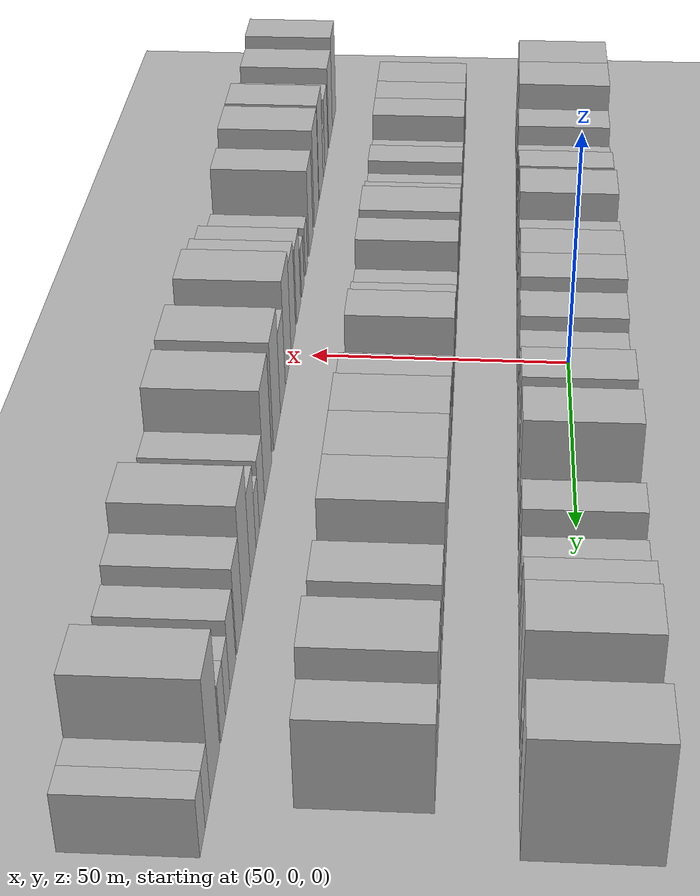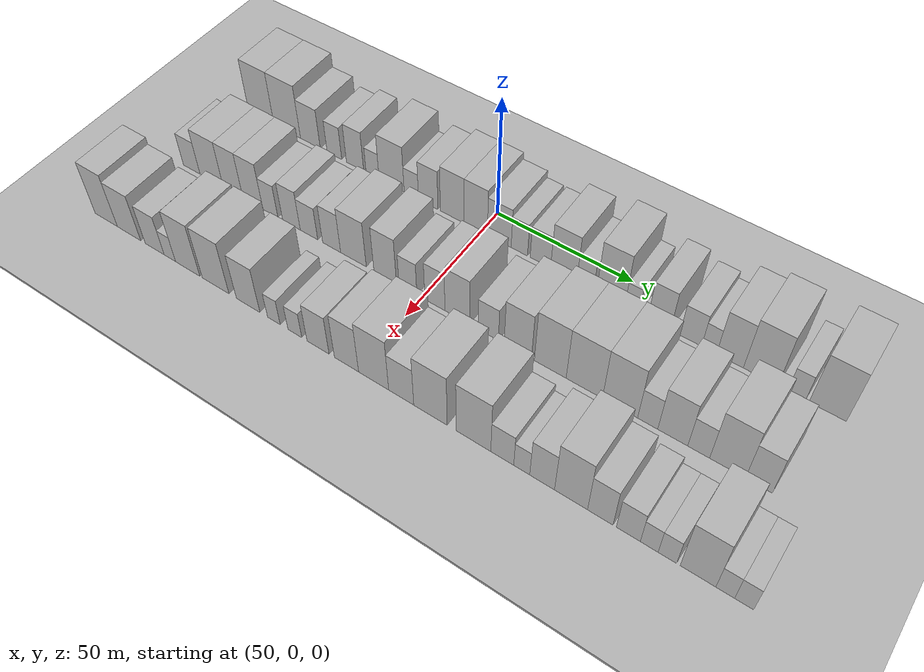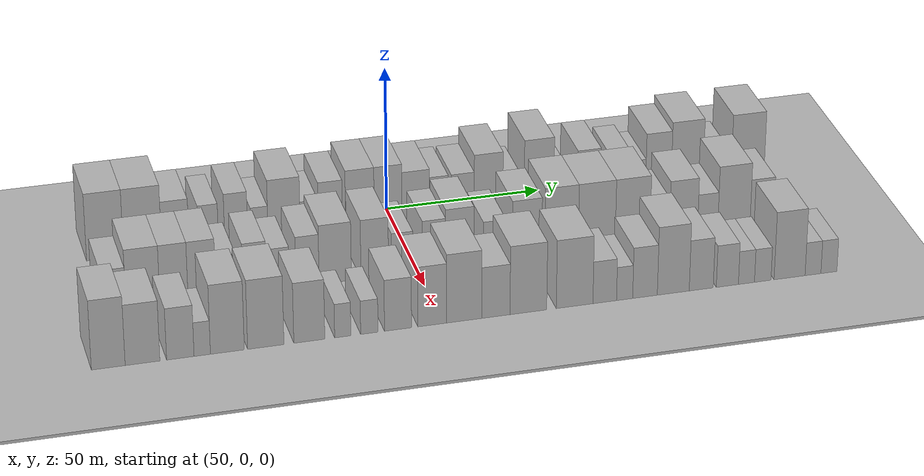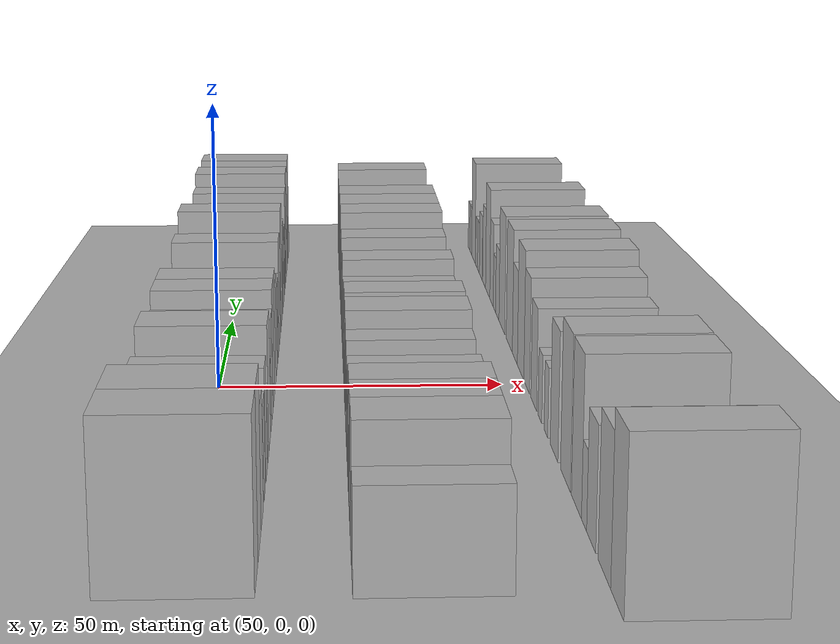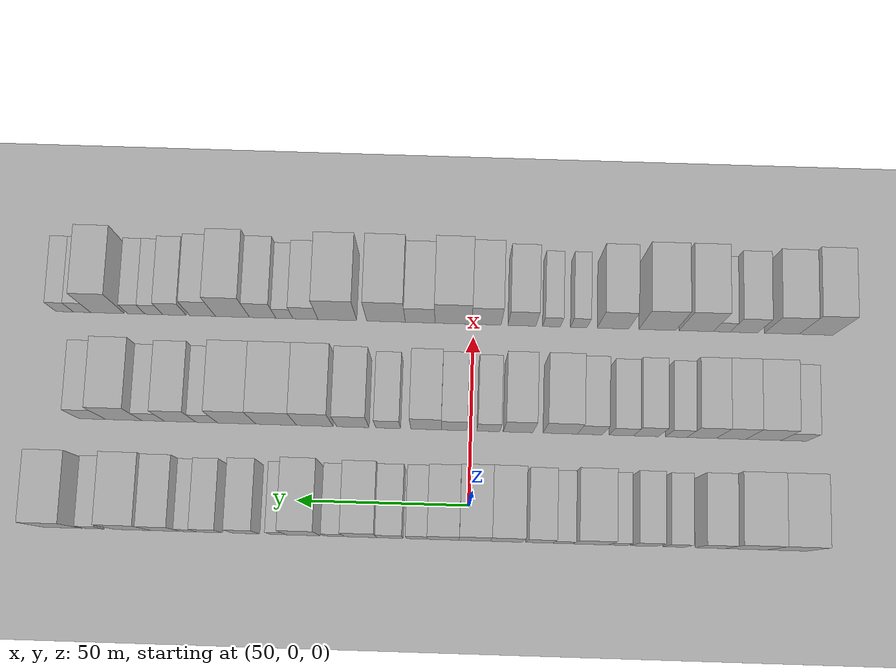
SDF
<sdf version="1.6">
 <world name="default">
  <include><name>ground_plane_1</name><uri>model://HANNAS_ground_plane</uri></include>
  <include>
   <name>ground_plane_2</name>
   <uri>model://HANNAS_ground_plane</uri>
   <pose>100 0 0  0 0 0</pose>
  </include>
  <model name="building_27">
   <static>1</static>
   <pose>50.0000 -91.9184 0 0.000000 0.000000 0.000000</pose>
   <link name="link">
    <pose>0 0 12.00 0 0 0</pose>
    <collision name="collision"><geometry><box><size>20.0000 11.5780 24.0000</size></box></geometry></collision>
    <visual name="visual">
     <cast_shadows>0</cast_shadows>
     <geometry><box><size>20.0000 11.5780 24.0000</size></box></geometry>
     <material>
      <script>
       <uri>model://HANNAS_wall/materials/scripts</uri>
       <uri>model://HANNAS_wall/materials/textures</uri>
       <name>vrc/HANNAS_wall</name>
      </script>
     </material>
    </visual>
   </link>
  </model>
  <model name="building_28">
   <static>1</static>
   <pose>50.0000 -80.1551 0 0.000000 0.000000 0.000000</pose>
   <link name="link">
    <pose>0 0 12.00 0 0 0</pose>
    <collision name="collision"><geometry><box><size>20.0000 11.9487 24.0000</size></box></geometry></collision>
    <visual name="visual">
     <cast_shadows>0</cast_shadows>
     <geometry><box><size>20.0000 11.9487 24.0000</size></box></geometry>
     <material>
      <script>
       <uri>model://HANNAS_wall/materials/scripts</uri>
       <uri>model://HANNAS_wall/materials/textures</uri>
       <name>vrc/HANNAS_wall</name>
      </script>
     </material>
    </visual>
   </link>
  </model>
  <model name="building_29">
   <static>1</static>
   <pose>50.0000 -69.8489 0 0.000000 0.000000 0.000000</pose>
   <link name="link">
    <pose>0 0 9.00 0 0 0</pose>
    <collision name="collision"><geometry><box><size>20.0000 8.6638 18.0000</size></box></geometry></collision>
    <visual name="visual">
     <cast_shadows>0</cast_shadows>
     <geometry><box><size>20.0000 8.6638 18.0000</size></box></geometry>
     <material>
      <script>
       <uri>model://HANNAS_wall/materials/scripts</uri>
       <uri>model://HANNAS_wall/materials/textures</uri>
       <name>vrc/HANNAS_wall</name>
      </script>
     </material>
    </visual>
   </link>
  </model>
  <model name="building_30">
   <static>1</static>
   <pose>50.0000 -59.3672 0 0.000000 0.000000 0.000000</pose>
   <link name="link">
    <pose>0 0 7.50 0 0 0</pose>
    <collision name="collision"><geometry><box><size>20.0000 6.2996 15.0000</size></box></geometry></collision>
    <visual name="visual">
     <cast_shadows>0</cast_shadows>
     <geometry><box><size>20.0000 6.2996 15.0000</size></box></geometry>
     <material>
      <script>
       <uri>model://HANNAS_wall/materials/scripts</uri>
       <uri>model://HANNAS_wall/materials/textures</uri>
       <name>vrc/HANNAS_wall</name>
      </script>
     </material>
    </visual>
   </link>
  </model>
  <model name="building_31">
   <static>1</static>
   <pose>50.0000 -50.5570 0 0.000000 0.000000 0.000000</pose>
   <link name="link">
    <pose>0 0 9.00 0 0 0</pose>
    <collision name="collision"><geometry><box><size>20.0000 7.3209 18.0000</size></box></geometry></collision>
    <visual name="visual">
     <cast_shadows>0</cast_shadows>
     <geometry><box><size>20.0000 7.3209 18.0000</size></box></geometry>
     <material>
      <script>
       <uri>model://HANNAS_wall/materials/scripts</uri>
       <uri>model://HANNAS_wall/materials/textures</uri>
       <name>vrc/HANNAS_wall</name>
      </script>
     </material>
    </visual>
   </link>
  </model>
  <model name="building_32">
   <static>1</static>
   <pose>50.0000 -43.1725 0 0.000000 0.000000 0.000000</pose>
   <link name="link">
    <pose>0 0 6.00 0 0 0</pose>
    <collision name="collision"><geometry><box><size>20.0000 5.4480 12.0000</size></box></geometry></collision>
    <visual name="visual">
     <cast_shadows>0</cast_shadows>
     <geometry><box><size>20.0000 5.4480 12.0000</size></box></geometry>
     <material>
      <script>
       <uri>model://HANNAS_wall/materials/scripts</uri>
       <uri>model://HANNAS_wall/materials/textures</uri>
       <name>vrc/HANNAS_wall</name>
      </script>
     </material>
    </visual>
   </link>
  </model>
  <model name="building_33">
   <static>1</static>
   <pose>50.0000 -35.2940 0 0.000000 0.000000 0.000000</pose>
   <link name="link">
    <pose>0 0 10.50 0 0 0</pose>
    <collision name="collision"><geometry><box><size>20.0000 10.3091 21.0000</size></box></geometry></collision>
    <visual name="visual">
     <cast_shadows>0</cast_shadows>
     <geometry><box><size>20.0000 10.3091 21.0000</size></box></geometry>
     <material>
      <script>
       <uri>model://HANNAS_wall/materials/scripts</uri>
       <uri>model://HANNAS_wall/materials/textures</uri>
       <name>vrc/HANNAS_wall</name>
      </script>
     </material>
    </visual>
   </link>
  </model>
  <model name="building_34">
   <static>1</static>
   <pose>50.0000 -27.2335 0 0.000000 0.000000 0.000000</pose>
   <link name="link">
    <pose>0 0 6.00 0 0 0</pose>
    <collision name="collision"><geometry><box><size>20.0000 5.8118 12.0000</size></box></geometry></collision>
    <visual name="visual">
     <cast_shadows>0</cast_shadows>
     <geometry><box><size>20.0000 5.8118 12.0000</size></box></geometry>
     <material>
      <script>
       <uri>model://HANNAS_wall/materials/scripts</uri>
       <uri>model://HANNAS_wall/materials/textures</uri>
       <name>vrc/HANNAS_wall</name>
      </script>
     </material>
    </visual>
   </link>
  </model>
  <model name="building_35">
   <static>1</static>
   <pose>50.0000 -20.4533 0 0.000000 0.000000 0.000000</pose>
   <link name="link">
    <pose>0 0 9.00 0 0 0</pose>
    <collision name="collision"><geometry><box><size>20.0000 7.7486 18.0000</size></box></geometry></collision>
    <visual name="visual">
     <cast_shadows>0</cast_shadows>
     <geometry><box><size>20.0000 7.7486 18.0000</size></box></geometry>
     <material>
      <script>
       <uri>model://HANNAS_wall/materials/scripts</uri>
       <uri>model://HANNAS_wall/materials/textures</uri>
       <name>vrc/HANNAS_wall</name>
      </script>
     </material>
    </visual>
   </link>
  </model>
  <model name="building_36">
   <static>1</static>
   <pose>50.0000 -10.9600 0 0.000000 0.000000 0.000000</pose>
   <link name="link">
    <pose>0 0 10.50 0 0 0</pose>
    <collision name="collision"><geometry><box><size>20.0000 9.2382 21.0000</size></box></geometry></collision>
    <visual name="visual">
     <cast_shadows>0</cast_shadows>
     <geometry><box><size>20.0000 9.2382 21.0000</size></box></geometry>
     <material>
      <script>
       <uri>model://HANNAS_wall/materials/scripts</uri>
       <uri>model://HANNAS_wall/materials/textures</uri>
       <name>vrc/HANNAS_wall</name>
      </script>
     </material>
    </visual>
   </link>
  </model>
  <model name="building_37">
   <static>1</static>
   <pose>50.0000 -1.8528 0 0.000000 0.000000 0.000000</pose>
   <link name="link">
    <pose>0 0 10.50 0 0 0</pose>
    <collision name="collision"><geometry><box><size>20.0000 8.9762 21.0000</size></box></geometry></collision>
    <visual name="visual">
     <cast_shadows>0</cast_shadows>
     <geometry><box><size>20.0000 8.9762 21.0000</size></box></geometry>
     <material>
      <script>
       <uri>model://HANNAS_wall/materials/scripts</uri>
       <uri>model://HANNAS_wall/materials/textures</uri>
       <name>vrc/HANNAS_wall</name>
      </script>
     </material>
    </visual>
   </link>
  </model>
  <model name="building_38">
   <static>1</static>
   <pose>50.0000 7.1288 0 0.000000 0.000000 0.000000</pose>
   <link name="link">
    <pose>0 0 9.00 0 0 0</pose>
    <collision name="collision"><geometry><box><size>20.0000 8.9869 18.0000</size></box></geometry></collision>
    <visual name="visual">
     <cast_shadows>0</cast_shadows>
     <geometry><box><size>20.0000 8.9869 18.0000</size></box></geometry>
     <material>
      <script>
       <uri>model://HANNAS_wall/materials/scripts</uri>
       <uri>model://HANNAS_wall/materials/textures</uri>
       <name>vrc/HANNAS_wall</name>
      </script>
     </material>
    </visual>
   </link>
  </model>
  <model name="building_39">
   <static>1</static>
   <pose>50.0000 14.6625 0 0.000000 0.000000 0.000000</pose>
   <link name="link">
    <pose>0 0 7.50 0 0 0</pose>
    <collision name="collision"><geometry><box><size>20.0000 6.0806 15.0000</size></box></geometry></collision>
    <visual name="visual">
     <cast_shadows>0</cast_shadows>
     <geometry><box><size>20.0000 6.0806 15.0000</size></box></geometry>
     <material>
      <script>
       <uri>model://HANNAS_wall/materials/scripts</uri>
       <uri>model://HANNAS_wall/materials/textures</uri>
       <name>vrc/HANNAS_wall</name>
      </script>
     </material>
    </visual>
   </link>
  </model>
  <model name="building_40">
   <static>1</static>
   <pose>50.0000 22.4409 0 0.000000 0.000000 0.000000</pose>
   <link name="link">
    <pose>0 0 7.50 0 0 0</pose>
    <collision name="collision"><geometry><box><size>20.0000 7.4761 15.0000</size></box></geometry></collision>
    <visual name="visual">
     <cast_shadows>0</cast_shadows>
     <geometry><box><size>20.0000 7.4761 15.0000</size></box></geometry>
     <material>
      <script>
       <uri>model://HANNAS_wall/materials/scripts</uri>
       <uri>model://HANNAS_wall/materials/textures</uri>
       <name>vrc/HANNAS_wall</name>
      </script>
     </material>
    </visual>
   </link>
  </model>
  <model name="building_41">
   <static>1</static>
   <pose>50.0000 30.8752 0 0.000000 0.000000 0.000000</pose>
   <link name="link">
    <pose>0 0 10.50 0 0 0</pose>
    <collision name="collision"><geometry><box><size>20.0000 9.3926 21.0000</size></box></geometry></collision>
    <visual name="visual">
     <cast_shadows>0</cast_shadows>
     <geometry><box><size>20.0000 9.3926 21.0000</size></box></geometry>
     <material>
      <script>
       <uri>model://HANNAS_wall/materials/scripts</uri>
       <uri>model://HANNAS_wall/materials/textures</uri>
       <name>vrc/HANNAS_wall</name>
      </script>
     </material>
    </visual>
   </link>
  </model>
  <model name="building_42">
   <static>1</static>
   <pose>50.0000 38.5648 0 0.000000 0.000000 0.000000</pose>
   <link name="link">
    <pose>0 0 6.00 0 0 0</pose>
    <collision name="collision"><geometry><box><size>20.0000 5.9864 12.0000</size></box></geometry></collision>
    <visual name="visual">
     <cast_shadows>0</cast_shadows>
     <geometry><box><size>20.0000 5.9864 12.0000</size></box></geometry>
     <material>
      <script>
       <uri>model://HANNAS_wall/materials/scripts</uri>
       <uri>model://HANNAS_wall/materials/textures</uri>
       <name>vrc/HANNAS_wall</name>
      </script>
     </material>
    </visual>
   </link>
  </model>
  <model name="building_43">
   <static>1</static>
   <pose>50.0000 47.4560 0 0.000000 0.000000 0.000000</pose>
   <link name="link">
    <pose>0 0 12.00 0 0 0</pose>
    <collision name="collision"><geometry><box><size>20.0000 9.7959 24.0000</size></box></geometry></collision>
    <visual name="visual">
     <cast_shadows>0</cast_shadows>
     <geometry><box><size>20.0000 9.7959 24.0000</size></box></geometry>
     <material>
      <script>
       <uri>model://HANNAS_wall/materials/scripts</uri>
       <uri>model://HANNAS_wall/materials/textures</uri>
       <name>vrc/HANNAS_wall</name>
      </script>
     </material>
    </visual>
   </link>
  </model>
  <model name="building_44">
   <static>1</static>
   <pose>50.0000 54.7736 0 0.000000 0.000000 0.000000</pose>
   <link name="link">
    <pose>0 0 6.00 0 0 0</pose>
    <collision name="collision"><geometry><box><size>20.0000 4.8394 12.0000</size></box></geometry></collision>
    <visual name="visual">
     <cast_shadows>0</cast_shadows>
     <geometry><box><size>20.0000 4.8394 12.0000</size></box></geometry>
     <material>
      <script>
       <uri>model://HANNAS_wall/materials/scripts</uri>
       <uri>model://HANNAS_wall/materials/textures</uri>
       <name>vrc/HANNAS_wall</name>
      </script>
     </material>
    </visual>
   </link>
  </model>
  <model name="building_45">
   <static>1</static>
   <pose>50.0000 64.0287 0 0.000000 0.000000 0.000000</pose>
   <link name="link">
    <pose>0 0 9.00 0 0 0</pose>
    <collision name="collision"><geometry><box><size>20.0000 7.6707 18.0000</size></box></geometry></collision>
    <visual name="visual">
     <cast_shadows>0</cast_shadows>
     <geometry><box><size>20.0000 7.6707 18.0000</size></box></geometry>
     <material>
      <script>
       <uri>model://HANNAS_wall/materials/scripts</uri>
       <uri>model://HANNAS_wall/materials/textures</uri>
       <name>vrc/HANNAS_wall</name>
      </script>
     </material>
    </visual>
   </link>
  </model>
  <model name="building_46">
   <static>1</static>
   <pose>50.0000 74.4639 0 0.000000 0.000000 0.000000</pose>
   <link name="link">
    <pose>0 0 7.50 0 0 0</pose>
    <collision name="collision"><geometry><box><size>20.0000 7.1998 15.0000</size></box></geometry></collision>
    <visual name="visual">
     <cast_shadows>0</cast_shadows>
     <geometry><box><size>20.0000 7.1998 15.0000</size></box></geometry>
     <material>
      <script>
       <uri>model://HANNAS_wall/materials/scripts</uri>
       <uri>model://HANNAS_wall/materials/textures</uri>
       <name>vrc/HANNAS_wall</name>
      </script>
     </material>
    </visual>
   </link>
  </model>
  <model name="building_47">
   <static>1</static>
   <pose>50.0000 80.4667 0 0.000000 0.000000 0.000000</pose>
   <link name="link">
    <pose>0 0 6.00 0 0 0</pose>
    <collision name="collision"><geometry><box><size>20.0000 4.8058 12.0000</size></box></geometry></collision>
    <visual name="visual">
     <cast_shadows>0</cast_shadows>
     <geometry><box><size>20.0000 4.8058 12.0000</size></box></geometry>
     <material>
      <script>
       <uri>model://HANNAS_wall/materials/scripts</uri>
       <uri>model://HANNAS_wall/materials/textures</uri>
       <name>vrc/HANNAS_wall</name>
      </script>
     </material>
    </visual>
   </link>
  </model>
  <model name="building_48">
   <static>1</static>
   <pose>50.0000 87.1606 0 0.000000 0.000000 0.000000</pose>
   <link name="link">
    <pose>0 0 10.50 0 0 0</pose>
    <collision name="collision"><geometry><box><size>20.0000 8.5819 21.0000</size></box></geometry></collision>
    <visual name="visual">
     <cast_shadows>0</cast_shadows>
     <geometry><box><size>20.0000 8.5819 21.0000</size></box></geometry>
     <material>
      <script>
       <uri>model://HANNAS_wall/materials/scripts</uri>
       <uri>model://HANNAS_wall/materials/textures</uri>
       <name>vrc/HANNAS_wall</name>
      </script>
     </material>
    </visual>
   </link>
  </model>
  <model name="building_49">
   <static>1</static>
   <pose>50.0000 96.8228 0 0.000000 0.000000 0.000000</pose>
   <link name="link">
    <pose>0 0 12.00 0 0 0</pose>
    <collision name="collision"><geometry><box><size>20.0000 10.7425 24.0000</size></box></geometry></collision>
    <visual name="visual">
     <cast_shadows>0</cast_shadows>
     <geometry><box><size>20.0000 10.7425 24.0000</size></box></geometry>
     <material>
      <script>
       <uri>model://HANNAS_wall/materials/scripts</uri>
       <uri>model://HANNAS_wall/materials/textures</uri>
       <name>vrc/HANNAS_wall</name>
      </script>
     </material>
    </visual>
   </link>
  </model>
  <model name="building_50">
   <static>1</static>
   <pose>50.0000 107.9392 0 0.000000 0.000000 0.000000</pose>
   <link name="link">
    <pose>0 0 6.00 0 0 0</pose>
    <collision name="collision"><geometry><box><size>20.0000 5.4903 12.0000</size></box></geometry></collision>
    <visual name="visual">
     <cast_shadows>0</cast_shadows>
     <geometry><box><size>20.0000 5.4903 12.0000</size></box></geometry>
     <material>
      <script>
       <uri>model://HANNAS_wall/materials/scripts</uri>
       <uri>model://HANNAS_wall/materials/textures</uri>
       <name>vrc/HANNAS_wall</name>
      </script>
     </material>
    </visual>
   </link>
  </model>
  <model name="building_51">
   <static>1</static>
   <pose>50.0000 117.2635 0 0.000000 0.000000 0.000000</pose>
   <link name="link">
    <pose>0 0 12.00 0 0 0</pose>
    <collision name="collision"><geometry><box><size>20.0000 11.1584 24.0000</size></box></geometry></collision>
    <visual name="visual">
     <cast_shadows>0</cast_shadows>
     <geometry><box><size>20.0000 11.1584 24.0000</size></box></geometry>
     <material>
      <script>
       <uri>model://HANNAS_wall/materials/scripts</uri>
       <uri>model://HANNAS_wall/materials/textures</uri>
       <name>vrc/HANNAS_wall</name>
      </script>
     </material>
    </visual>
   </link>
  </model>
  <model name="building_99">
   <static>1</static>
   <pose>82.0000 -94.6465 0 0.000000 0.000000 0.000000</pose>
   <link name="link">
    <pose>0 0 7.50 0 0 0</pose>
    <collision name="collision"><geometry><box><size>20.0000 7.4937 15.0000</size></box></geometry></collision>
    <visual name="visual">
     <cast_shadows>0</cast_shadows>
     <geometry><box><size>20.0000 7.4937 15.0000</size></box></geometry>
     <material>
      <script>
       <uri>model://HANNAS_wall/materials/scripts</uri>
       <uri>model://HANNAS_wall/materials/textures</uri>
       <name>vrc/HANNAS_wall</name>
      </script>
     </material>
    </visual>
   </link>
  </model>
  <model name="building_100">
   <static>1</static>
   <pose>82.0000 -85.7060 0 0.000000 0.000000 0.000000</pose>
   <link name="link">
    <pose>0 0 10.50 0 0 0</pose>
    <collision name="collision"><geometry><box><size>20.0000 10.3873 21.0000</size></box></geometry></collision>
    <visual name="visual">
     <cast_shadows>0</cast_shadows>
     <geometry><box><size>20.0000 10.3873 21.0000</size></box></geometry>
     <material>
      <script>
       <uri>model://HANNAS_wall/materials/scripts</uri>
       <uri>model://HANNAS_wall/materials/textures</uri>
       <name>vrc/HANNAS_wall</name>
      </script>
     </material>
    </visual>
   </link>
  </model>
  <model name="building_101">
   <static>1</static>
   <pose>82.0000 -76.1959 0 0.000000 0.000000 0.000000</pose>
   <link name="link">
    <pose>0 0 10.50 0 0 0</pose>
    <collision name="collision"><geometry><box><size>20.0000 8.6330 21.0000</size></box></geometry></collision>
    <visual name="visual">
     <cast_shadows>0</cast_shadows>
     <geometry><box><size>20.0000 8.6330 21.0000</size></box></geometry>
     <material>
      <script>
       <uri>model://HANNAS_wall/materials/scripts</uri>
       <uri>model://HANNAS_wall/materials/textures</uri>
       <name>vrc/HANNAS_wall</name>
      </script>
     </material>
    </visual>
   </link>
  </model>
  <model name="building_102">
   <static>1</static>
   <pose>82.0000 -67.5923 0 0.000000 0.000000 0.000000</pose>
   <link name="link">
    <pose>0 0 10.50 0 0 0</pose>
    <collision name="collision"><geometry><box><size>20.0000 8.5742 21.0000</size></box></geometry></collision>
    <visual name="visual">
     <cast_shadows>0</cast_shadows>
     <geometry><box><size>20.0000 8.5742 21.0000</size></box></geometry>
     <material>
      <script>
       <uri>model://HANNAS_wall/materials/scripts</uri>
       <uri>model://HANNAS_wall/materials/textures</uri>
       <name>vrc/HANNAS_wall</name>
      </script>
     </material>
    </visual>
   </link>
  </model>
  <model name="building_103">
   <static>1</static>
   <pose>82.0000 -60.1363 0 0.000000 0.000000 0.000000</pose>
   <link name="link">
    <pose>0 0 7.50 0 0 0</pose>
    <collision name="collision"><geometry><box><size>20.0000 6.3377 15.0000</size></box></geometry></collision>
    <visual name="visual">
     <cast_shadows>0</cast_shadows>
     <geometry><box><size>20.0000 6.3377 15.0000</size></box></geometry>
     <material>
      <script>
       <uri>model://HANNAS_wall/materials/scripts</uri>
       <uri>model://HANNAS_wall/materials/textures</uri>
       <name>vrc/HANNAS_wall</name>
      </script>
     </material>
    </visual>
   </link>
  </model>
  <model name="building_104">
   <static>1</static>
   <pose>82.0000 -51.3059 0 0.000000 0.000000 0.000000</pose>
   <link name="link">
    <pose>0 0 9.00 0 0 0</pose>
    <collision name="collision"><geometry><box><size>20.0000 7.3232 18.0000</size></box></geometry></collision>
    <visual name="visual">
     <cast_shadows>0</cast_shadows>
     <geometry><box><size>20.0000 7.3232 18.0000</size></box></geometry>
     <material>
      <script>
       <uri>model://HANNAS_wall/materials/scripts</uri>
       <uri>model://HANNAS_wall/materials/textures</uri>
       <name>vrc/HANNAS_wall</name>
      </script>
     </material>
    </visual>
   </link>
  </model>
  <model name="building_105">
   <static>1</static>
   <pose>82.0000 -44.0689 0 0.000000 0.000000 0.000000</pose>
   <link name="link">
    <pose>0 0 7.50 0 0 0</pose>
    <collision name="collision"><geometry><box><size>20.0000 7.1507 15.0000</size></box></geometry></collision>
    <visual name="visual">
     <cast_shadows>0</cast_shadows>
     <geometry><box><size>20.0000 7.1507 15.0000</size></box></geometry>
     <material>
      <script>
       <uri>model://HANNAS_wall/materials/scripts</uri>
       <uri>model://HANNAS_wall/materials/textures</uri>
       <name>vrc/HANNAS_wall</name>
      </script>
     </material>
    </visual>
   </link>
  </model>
  <model name="building_106">
   <static>1</static>
   <pose>82.0000 -34.8706 0 0.000000 0.000000 0.000000</pose>
   <link name="link">
    <pose>0 0 9.00 0 0 0</pose>
    <collision name="collision"><geometry><box><size>20.0000 7.2458 18.0000</size></box></geometry></collision>
    <visual name="visual">
     <cast_shadows>0</cast_shadows>
     <geometry><box><size>20.0000 7.2458 18.0000</size></box></geometry>
     <material>
      <script>
       <uri>model://HANNAS_wall/materials/scripts</uri>
       <uri>model://HANNAS_wall/materials/textures</uri>
       <name>vrc/HANNAS_wall</name>
      </script>
     </material>
    </visual>
   </link>
  </model>
  <model name="building_107">
   <static>1</static>
   <pose>82.0000 -26.1908 0 0.000000 0.000000 0.000000</pose>
   <link name="link">
    <pose>0 0 10.50 0 0 0</pose>
    <collision name="collision"><geometry><box><size>20.0000 10.1138 21.0000</size></box></geometry></collision>
    <visual name="visual">
     <cast_shadows>0</cast_shadows>
     <geometry><box><size>20.0000 10.1138 21.0000</size></box></geometry>
     <material>
      <script>
       <uri>model://HANNAS_wall/materials/scripts</uri>
       <uri>model://HANNAS_wall/materials/textures</uri>
       <name>vrc/HANNAS_wall</name>
      </script>
     </material>
    </visual>
   </link>
  </model>
  <model name="building_108">
   <static>1</static>
   <pose>82.0000 -13.7971 0 0.000000 0.000000 0.000000</pose>
   <link name="link">
    <pose>0 0 10.50 0 0 0</pose>
    <collision name="collision"><geometry><box><size>20.0000 8.6737 21.0000</size></box></geometry></collision>
    <visual name="visual">
     <cast_shadows>0</cast_shadows>
     <geometry><box><size>20.0000 8.6737 21.0000</size></box></geometry>
     <material>
      <script>
       <uri>model://HANNAS_wall/materials/scripts</uri>
       <uri>model://HANNAS_wall/materials/textures</uri>
       <name>vrc/HANNAS_wall</name>
      </script>
     </material>
    </visual>
   </link>
  </model>
  <model name="building_109">
   <static>1</static>
   <pose>82.0000 -5.1070 0 0.000000 0.000000 0.000000</pose>
   <link name="link">
    <pose>0 0 7.50 0 0 0</pose>
    <collision name="collision"><geometry><box><size>20.0000 6.7066 15.0000</size></box></geometry></collision>
    <visual name="visual">
     <cast_shadows>0</cast_shadows>
     <geometry><box><size>20.0000 6.7066 15.0000</size></box></geometry>
     <material>
      <script>
       <uri>model://HANNAS_wall/materials/scripts</uri>
       <uri>model://HANNAS_wall/materials/textures</uri>
       <name>vrc/HANNAS_wall</name>
      </script>
     </material>
    </visual>
   </link>
  </model>
  <model name="building_110">
   <static>1</static>
   <pose>82.0000 4.9495 0 0.000000 0.000000 0.000000</pose>
   <link name="link">
    <pose>0 0 9.00 0 0 0</pose>
    <collision name="collision"><geometry><box><size>20.0000 7.4064 18.0000</size></box></geometry></collision>
    <visual name="visual">
     <cast_shadows>0</cast_shadows>
     <geometry><box><size>20.0000 7.4064 18.0000</size></box></geometry>
     <material>
      <script>
       <uri>model://HANNAS_wall/materials/scripts</uri>
       <uri>model://HANNAS_wall/materials/textures</uri>
       <name>vrc/HANNAS_wall</name>
      </script>
     </material>
    </visual>
   </link>
  </model>
  <model name="building_111">
   <static>1</static>
   <pose>82.0000 13.1354 0 0.000000 0.000000 0.000000</pose>
   <link name="link">
    <pose>0 0 10.50 0 0 0</pose>
    <collision name="collision"><geometry><box><size>20.0000 8.9654 21.0000</size></box></geometry></collision>
    <visual name="visual">
     <cast_shadows>0</cast_shadows>
     <geometry><box><size>20.0000 8.9654 21.0000</size></box></geometry>
     <material>
      <script>
       <uri>model://HANNAS_wall/materials/scripts</uri>
       <uri>model://HANNAS_wall/materials/textures</uri>
       <name>vrc/HANNAS_wall</name>
      </script>
     </material>
    </visual>
   </link>
  </model>
  <model name="building_112">
   <static>1</static>
   <pose>82.0000 24.2480 0 0.000000 0.000000 0.000000</pose>
   <link name="link">
    <pose>0 0 7.50 0 0 0</pose>
    <collision name="collision"><geometry><box><size>20.0000 7.2598 15.0000</size></box></geometry></collision>
    <visual name="visual">
     <cast_shadows>0</cast_shadows>
     <geometry><box><size>20.0000 7.2598 15.0000</size></box></geometry>
     <material>
      <script>
       <uri>model://HANNAS_wall/materials/scripts</uri>
       <uri>model://HANNAS_wall/materials/textures</uri>
       <name>vrc/HANNAS_wall</name>
      </script>
     </material>
    </visual>
   </link>
  </model>
  <model name="building_113">
   <static>1</static>
   <pose>82.0000 34.6141 0 0.000000 0.000000 0.000000</pose>
   <link name="link">
    <pose>0 0 10.50 0 0 0</pose>
    <collision name="collision"><geometry><box><size>20.0000 9.4723 21.0000</size></box></geometry></collision>
    <visual name="visual">
     <cast_shadows>0</cast_shadows>
     <geometry><box><size>20.0000 9.4723 21.0000</size></box></geometry>
     <material>
      <script>
       <uri>model://HANNAS_wall/materials/scripts</uri>
       <uri>model://HANNAS_wall/materials/textures</uri>
       <name>vrc/HANNAS_wall</name>
      </script>
     </material>
    </visual>
   </link>
  </model>
  <model name="building_114">
   <static>1</static>
   <pose>82.0000 45.7256 0 0.000000 0.000000 0.000000</pose>
   <link name="link">
    <pose>0 0 12.00 0 0 0</pose>
    <collision name="collision"><geometry><box><size>20.0000 10.7508 24.0000</size></box></geometry></collision>
    <visual name="visual">
     <cast_shadows>0</cast_shadows>
     <geometry><box><size>20.0000 10.7508 24.0000</size></box></geometry>
     <material>
      <script>
       <uri>model://HANNAS_wall/materials/scripts</uri>
       <uri>model://HANNAS_wall/materials/textures</uri>
       <name>vrc/HANNAS_wall</name>
      </script>
     </material>
    </visual>
   </link>
  </model>
  <model name="building_115">
   <static>1</static>
   <pose>82.0000 57.0901 0 0.000000 0.000000 0.000000</pose>
   <link name="link">
    <pose>0 0 12.00 0 0 0</pose>
    <collision name="collision"><geometry><box><size>20.0000 11.9782 24.0000</size></box></geometry></collision>
    <visual name="visual">
     <cast_shadows>0</cast_shadows>
     <geometry><box><size>20.0000 11.9782 24.0000</size></box></geometry>
     <material>
      <script>
       <uri>model://HANNAS_wall/materials/scripts</uri>
       <uri>model://HANNAS_wall/materials/textures</uri>
       <name>vrc/HANNAS_wall</name>
      </script>
     </material>
    </visual>
   </link>
  </model>
  <model name="building_116">
   <static>1</static>
   <pose>82.0000 68.7247 0 0.000000 0.000000 0.000000</pose>
   <link name="link">
    <pose>0 0 12.00 0 0 0</pose>
    <collision name="collision"><geometry><box><size>20.0000 11.2910 24.0000</size></box></geometry></collision>
    <visual name="visual">
     <cast_shadows>0</cast_shadows>
     <geometry><box><size>20.0000 11.2910 24.0000</size></box></geometry>
     <material>
      <script>
       <uri>model://HANNAS_wall/materials/scripts</uri>
       <uri>model://HANNAS_wall/materials/textures</uri>
       <name>vrc/HANNAS_wall</name>
      </script>
     </material>
    </visual>
   </link>
  </model>
  <model name="building_117">
   <static>1</static>
   <pose>82.0000 77.5356 0 0.000000 0.000000 0.000000</pose>
   <link name="link">
    <pose>0 0 7.50 0 0 0</pose>
    <collision name="collision"><geometry><box><size>20.0000 6.3309 15.0000</size></box></geometry></collision>
    <visual name="visual">
     <cast_shadows>0</cast_shadows>
     <geometry><box><size>20.0000 6.3309 15.0000</size></box></geometry>
     <material>
      <script>
       <uri>model://HANNAS_wall/materials/scripts</uri>
       <uri>model://HANNAS_wall/materials/textures</uri>
       <name>vrc/HANNAS_wall</name>
      </script>
     </material>
    </visual>
   </link>
  </model>
  <model name="building_118">
   <static>1</static>
   <pose>82.0000 85.3343 0 0.000000 0.000000 0.000000</pose>
   <link name="link">
    <pose>0 0 10.50 0 0 0</pose>
    <collision name="collision"><geometry><box><size>20.0000 9.2666 21.0000</size></box></geometry></collision>
    <visual name="visual">
     <cast_shadows>0</cast_shadows>
     <geometry><box><size>20.0000 9.2666 21.0000</size></box></geometry>
     <material>
      <script>
       <uri>model://HANNAS_wall/materials/scripts</uri>
       <uri>model://HANNAS_wall/materials/textures</uri>
       <name>vrc/HANNAS_wall</name>
      </script>
     </material>
    </visual>
   </link>
  </model>
  <model name="building_119">
   <static>1</static>
   <pose>82.0000 93.2870 0 0.000000 0.000000 0.000000</pose>
   <link name="link">
    <pose>0 0 7.50 0 0 0</pose>
    <collision name="collision"><geometry><box><size>20.0000 6.6388 15.0000</size></box></geometry></collision>
    <visual name="visual">
     <cast_shadows>0</cast_shadows>
     <geometry><box><size>20.0000 6.6388 15.0000</size></box></geometry>
     <material>
      <script>
       <uri>model://HANNAS_wall/materials/scripts</uri>
       <uri>model://HANNAS_wall/materials/textures</uri>
       <name>vrc/HANNAS_wall</name>
      </script>
     </material>
    </visual>
   </link>
  </model>
  <model name="building_120">
   <static>1</static>
   <pose>82.0000 101.9170 0 0.000000 0.000000 0.000000</pose>
   <link name="link">
    <pose>0 0 12.00 0 0 0</pose>
    <collision name="collision"><geometry><box><size>20.0000 10.6210 24.0000</size></box></geometry></collision>
    <visual name="visual">
     <cast_shadows>0</cast_shadows>
     <geometry><box><size>20.0000 10.6210 24.0000</size></box></geometry>
     <material>
      <script>
       <uri>model://HANNAS_wall/materials/scripts</uri>
       <uri>model://HANNAS_wall/materials/textures</uri>
       <name>vrc/HANNAS_wall</name>
      </script>
     </material>
    </visual>
   </link>
  </model>
  <model name="building_121">
   <static>1</static>
   <pose>82.0000 111.1490 0 0.000000 0.000000 0.000000</pose>
   <link name="link">
    <pose>0 0 9.00 0 0 0</pose>
    <collision name="collision"><geometry><box><size>20.0000 7.8430 18.0000</size></box></geometry></collision>
    <visual name="visual">
     <cast_shadows>0</cast_shadows>
     <geometry><box><size>20.0000 7.8430 18.0000</size></box></geometry>
     <material>
      <script>
       <uri>model://HANNAS_wall/materials/scripts</uri>
       <uri>model://HANNAS_wall/materials/textures</uri>
       <name>vrc/HANNAS_wall</name>
      </script>
     </material>
    </visual>
   </link>
  </model>
  <model name="building_172">
   <static>1</static>
   <pose>114.0000 -101.7325 0 0.000000 0.000000 0.000000</pose>
   <link name="link">
    <pose>0 0 12.00 0 0 0</pose>
    <collision name="collision"><geometry><box><size>20.0000 10.0296 24.0000</size></box></geometry></collision>
    <visual name="visual">
     <cast_shadows>0</cast_shadows>
     <geometry><box><size>20.0000 10.0296 24.0000</size></box></geometry>
     <material>
      <script>
       <uri>model://HANNAS_wall/materials/scripts</uri>
       <uri>model://HANNAS_wall/materials/textures</uri>
       <name>vrc/HANNAS_wall</name>
      </script>
     </material>
    </visual>
   </link>
  </model>
  <model name="building_173">
   <static>1</static>
   <pose>114.0000 -91.5456 0 0.000000 0.000000 0.000000</pose>
   <link name="link">
    <pose>0 0 10.50 0 0 0</pose>
    <collision name="collision"><geometry><box><size>20.0000 10.3441 21.0000</size></box></geometry></collision>
    <visual name="visual">
     <cast_shadows>0</cast_shadows>
     <geometry><box><size>20.0000 10.3441 21.0000</size></box></geometry>
     <material>
      <script>
       <uri>model://HANNAS_wall/materials/scripts</uri>
       <uri>model://HANNAS_wall/materials/textures</uri>
       <name>vrc/HANNAS_wall</name>
      </script>
     </material>
    </visual>
   </link>
  </model>
  <model name="building_174">
   <static>1</static>
   <pose>114.0000 -80.2662 0 0.000000 0.000000 0.000000</pose>
   <link name="link">
    <pose>0 0 9.00 0 0 0</pose>
    <collision name="collision"><geometry><box><size>20.0000 8.2148 18.0000</size></box></geometry></collision>
    <visual name="visual">
     <cast_shadows>0</cast_shadows>
     <geometry><box><size>20.0000 8.2148 18.0000</size></box></geometry>
     <material>
      <script>
       <uri>model://HANNAS_wall/materials/scripts</uri>
       <uri>model://HANNAS_wall/materials/textures</uri>
       <name>vrc/HANNAS_wall</name>
      </script>
     </material>
    </visual>
   </link>
  </model>
  <model name="building_175">
   <static>1</static>
   <pose>114.0000 -73.7065 0 0.000000 0.000000 0.000000</pose>
   <link name="link">
    <pose>0 0 6.00 0 0 0</pose>
    <collision name="collision"><geometry><box><size>20.0000 4.9046 12.0000</size></box></geometry></collision>
    <visual name="visual">
     <cast_shadows>0</cast_shadows>
     <geometry><box><size>20.0000 4.9046 12.0000</size></box></geometry>
     <material>
      <script>
       <uri>model://HANNAS_wall/materials/scripts</uri>
       <uri>model://HANNAS_wall/materials/textures</uri>
       <name>vrc/HANNAS_wall</name>
      </script>
     </material>
    </visual>
   </link>
  </model>
  <model name="building_176">
   <static>1</static>
   <pose>114.0000 -66.1539 0 0.000000 0.000000 0.000000</pose>
   <link name="link">
    <pose>0 0 12.00 0 0 0</pose>
    <collision name="collision"><geometry><box><size>20.0000 10.2007 24.0000</size></box></geometry></collision>
    <visual name="visual">
     <cast_shadows>0</cast_shadows>
     <geometry><box><size>20.0000 10.2007 24.0000</size></box></geometry>
     <material>
      <script>
       <uri>model://HANNAS_wall/materials/scripts</uri>
       <uri>model://HANNAS_wall/materials/textures</uri>
       <name>vrc/HANNAS_wall</name>
      </script>
     </material>
    </visual>
   </link>
  </model>
  <model name="building_177">
   <static>1</static>
   <pose>114.0000 -54.5655 0 0.000000 0.000000 0.000000</pose>
   <link name="link">
    <pose>0 0 12.00 0 0 0</pose>
    <collision name="collision"><geometry><box><size>20.0000 10.9760 24.0000</size></box></geometry></collision>
    <visual name="visual">
     <cast_shadows>0</cast_shadows>
     <geometry><box><size>20.0000 10.9760 24.0000</size></box></geometry>
     <material>
      <script>
       <uri>model://HANNAS_wall/materials/scripts</uri>
       <uri>model://HANNAS_wall/materials/textures</uri>
       <name>vrc/HANNAS_wall</name>
      </script>
     </material>
    </visual>
   </link>
  </model>
  <model name="building_178">
   <static>1</static>
   <pose>114.0000 -41.3701 0 0.000000 0.000000 0.000000</pose>
   <link name="link">
    <pose>0 0 10.50 0 0 0</pose>
    <collision name="collision"><geometry><box><size>20.0000 9.4148 21.0000</size></box></geometry></collision>
    <visual name="visual">
     <cast_shadows>0</cast_shadows>
     <geometry><box><size>20.0000 9.4148 21.0000</size></box></geometry>
     <material>
      <script>
       <uri>model://HANNAS_wall/materials/scripts</uri>
       <uri>model://HANNAS_wall/materials/textures</uri>
       <name>vrc/HANNAS_wall</name>
      </script>
     </material>
    </visual>
   </link>
  </model>
  <model name="building_179">
   <static>1</static>
   <pose>114.0000 -31.1896 0 0.000000 0.000000 0.000000</pose>
   <link name="link">
    <pose>0 0 6.00 0 0 0</pose>
    <collision name="collision"><geometry><box><size>20.0000 4.9461 12.0000</size></box></geometry></collision>
    <visual name="visual">
     <cast_shadows>0</cast_shadows>
     <geometry><box><size>20.0000 4.9461 12.0000</size></box></geometry>
     <material>
      <script>
       <uri>model://HANNAS_wall/materials/scripts</uri>
       <uri>model://HANNAS_wall/materials/textures</uri>
       <name>vrc/HANNAS_wall</name>
      </script>
     </material>
    </visual>
   </link>
  </model>
  <model name="building_180">
   <static>1</static>
   <pose>114.0000 -23.0652 0 0.000000 0.000000 0.000000</pose>
   <link name="link">
    <pose>0 0 6.00 0 0 0</pose>
    <collision name="collision"><geometry><box><size>20.0000 5.3028 12.0000</size></box></geometry></collision>
    <visual name="visual">
     <cast_shadows>0</cast_shadows>
     <geometry><box><size>20.0000 5.3028 12.0000</size></box></geometry>
     <material>
      <script>
       <uri>model://HANNAS_wall/materials/scripts</uri>
       <uri>model://HANNAS_wall/materials/textures</uri>
       <name>vrc/HANNAS_wall</name>
      </script>
     </material>
    </visual>
   </link>
  </model>
  <model name="building_181">
   <static>1</static>
   <pose>114.0000 -14.2628 0 0.000000 0.000000 0.000000</pose>
   <link name="link">
    <pose>0 0 9.00 0 0 0</pose>
    <collision name="collision"><geometry><box><size>20.0000 8.3018 18.0000</size></box></geometry></collision>
    <visual name="visual">
     <cast_shadows>0</cast_shadows>
     <geometry><box><size>20.0000 8.3018 18.0000</size></box></geometry>
     <material>
      <script>
       <uri>model://HANNAS_wall/materials/scripts</uri>
       <uri>model://HANNAS_wall/materials/textures</uri>
       <name>vrc/HANNAS_wall</name>
      </script>
     </material>
    </visual>
   </link>
  </model>
  <model name="building_182">
   <static>1</static>
   <pose>114.0000 -3.6718 0 0.000000 0.000000 0.000000</pose>
   <link name="link">
    <pose>0 0 10.50 0 0 0</pose>
    <collision name="collision"><geometry><box><size>20.0000 8.8803 21.0000</size></box></geometry></collision>
    <visual name="visual">
     <cast_shadows>0</cast_shadows>
     <geometry><box><size>20.0000 8.8803 21.0000</size></box></geometry>
     <material>
      <script>
       <uri>model://HANNAS_wall/materials/scripts</uri>
       <uri>model://HANNAS_wall/materials/textures</uri>
       <name>vrc/HANNAS_wall</name>
      </script>
     </material>
    </visual>
   </link>
  </model>
  <model name="building_183">
   <static>1</static>
   <pose>114.0000 6.1896 0 0.000000 0.000000 0.000000</pose>
   <link name="link">
    <pose>0 0 12.00 0 0 0</pose>
    <collision name="collision"><geometry><box><size>20.0000 10.8426 24.0000</size></box></geometry></collision>
    <visual name="visual">
     <cast_shadows>0</cast_shadows>
     <geometry><box><size>20.0000 10.8426 24.0000</size></box></geometry>
     <material>
      <script>
       <uri>model://HANNAS_wall/materials/scripts</uri>
       <uri>model://HANNAS_wall/materials/textures</uri>
       <name>vrc/HANNAS_wall</name>
      </script>
     </material>
    </visual>
   </link>
  </model>
  <model name="building_184">
   <static>1</static>
   <pose>114.0000 16.0147 0 0.000000 0.000000 0.000000</pose>
   <link name="link">
    <pose>0 0 9.00 0 0 0</pose>
    <collision name="collision"><geometry><box><size>20.0000 8.8076 18.0000</size></box></geometry></collision>
    <visual name="visual">
     <cast_shadows>0</cast_shadows>
     <geometry><box><size>20.0000 8.8076 18.0000</size></box></geometry>
     <material>
      <script>
       <uri>model://HANNAS_wall/materials/scripts</uri>
       <uri>model://HANNAS_wall/materials/textures</uri>
       <name>vrc/HANNAS_wall</name>
      </script>
     </material>
    </visual>
   </link>
  </model>
  <model name="building_185">
   <static>1</static>
   <pose>114.0000 26.1575 0 0.000000 0.000000 0.000000</pose>
   <link name="link">
    <pose>0 0 12.00 0 0 0</pose>
    <collision name="collision"><geometry><box><size>20.0000 11.4779 24.0000</size></box></geometry></collision>
    <visual name="visual">
     <cast_shadows>0</cast_shadows>
     <geometry><box><size>20.0000 11.4779 24.0000</size></box></geometry>
     <material>
      <script>
       <uri>model://HANNAS_wall/materials/scripts</uri>
       <uri>model://HANNAS_wall/materials/textures</uri>
       <name>vrc/HANNAS_wall</name>
      </script>
     </material>
    </visual>
   </link>
  </model>
  <model name="building_186">
   <static>1</static>
   <pose>114.0000 40.6592 0 0.000000 0.000000 0.000000</pose>
   <link name="link">
    <pose>0 0 12.00 0 0 0</pose>
    <collision name="collision"><geometry><box><size>20.0000 11.5256 24.0000</size></box></geometry></collision>
    <visual name="visual">
     <cast_shadows>0</cast_shadows>
     <geometry><box><size>20.0000 11.5256 24.0000</size></box></geometry>
     <material>
      <script>
       <uri>model://HANNAS_wall/materials/scripts</uri>
       <uri>model://HANNAS_wall/materials/textures</uri>
       <name>vrc/HANNAS_wall</name>
      </script>
     </material>
    </visual>
   </link>
  </model>
  <model name="building_187">
   <static>1</static>
   <pose>114.0000 50.1528 0 0.000000 0.000000 0.000000</pose>
   <link name="link">
    <pose>0 0 7.50 0 0 0</pose>
    <collision name="collision"><geometry><box><size>20.0000 7.4616 15.0000</size></box></geometry></collision>
    <visual name="visual">
     <cast_shadows>0</cast_shadows>
     <geometry><box><size>20.0000 7.4616 15.0000</size></box></geometry>
     <material>
      <script>
       <uri>model://HANNAS_wall/materials/scripts</uri>
       <uri>model://HANNAS_wall/materials/textures</uri>
       <name>vrc/HANNAS_wall</name>
      </script>
     </material>
    </visual>
   </link>
  </model>
  <model name="building_188">
   <static>1</static>
   <pose>114.0000 56.4377 0 0.000000 0.000000 0.000000</pose>
   <link name="link">
    <pose>0 0 6.00 0 0 0</pose>
    <collision name="collision"><geometry><box><size>20.0000 5.1082 12.0000</size></box></geometry></collision>
    <visual name="visual">
     <cast_shadows>0</cast_shadows>
     <geometry><box><size>20.0000 5.1082 12.0000</size></box></geometry>
     <material>
      <script>
       <uri>model://HANNAS_wall/materials/scripts</uri>
       <uri>model://HANNAS_wall/materials/textures</uri>
       <name>vrc/HANNAS_wall</name>
      </script>
     </material>
    </visual>
   </link>
  </model>
  <model name="building_189">
   <static>1</static>
   <pose>114.0000 62.9017 0 0.000000 0.000000 0.000000</pose>
   <link name="link">
    <pose>0 0 9.00 0 0 0</pose>
    <collision name="collision"><geometry><box><size>20.0000 7.8199 18.0000</size></box></geometry></collision>
    <visual name="visual">
     <cast_shadows>0</cast_shadows>
     <geometry><box><size>20.0000 7.8199 18.0000</size></box></geometry>
     <material>
      <script>
       <uri>model://HANNAS_wall/materials/scripts</uri>
       <uri>model://HANNAS_wall/materials/textures</uri>
       <name>vrc/HANNAS_wall</name>
      </script>
     </material>
    </visual>
   </link>
  </model>
  <model name="building_190">
   <static>1</static>
   <pose>114.0000 71.8991 0 0.000000 0.000000 0.000000</pose>
   <link name="link">
    <pose>0 0 12.00 0 0 0</pose>
    <collision name="collision"><geometry><box><size>20.0000 10.1749 24.0000</size></box></geometry></collision>
    <visual name="visual">
     <cast_shadows>0</cast_shadows>
     <geometry><box><size>20.0000 10.1749 24.0000</size></box></geometry>
     <material>
      <script>
       <uri>model://HANNAS_wall/materials/scripts</uri>
       <uri>model://HANNAS_wall/materials/textures</uri>
       <name>vrc/HANNAS_wall</name>
      </script>
     </material>
    </visual>
   </link>
  </model>
  <model name="building_191">
   <static>1</static>
   <pose>114.0000 80.8229 0 0.000000 0.000000 0.000000</pose>
   <link name="link">
    <pose>0 0 9.00 0 0 0</pose>
    <collision name="collision"><geometry><box><size>20.0000 7.6728 18.0000</size></box></geometry></collision>
    <visual name="visual">
     <cast_shadows>0</cast_shadows>
     <geometry><box><size>20.0000 7.6728 18.0000</size></box></geometry>
     <material>
      <script>
       <uri>model://HANNAS_wall/materials/scripts</uri>
       <uri>model://HANNAS_wall/materials/textures</uri>
       <name>vrc/HANNAS_wall</name>
      </script>
     </material>
    </visual>
   </link>
  </model>
  <model name="building_192">
   <static>1</static>
   <pose>114.0000 89.1996 0 0.000000 0.000000 0.000000</pose>
   <link name="link">
    <pose>0 0 7.50 0 0 0</pose>
    <collision name="collision"><geometry><box><size>20.0000 7.0807 15.0000</size></box></geometry></collision>
    <visual name="visual">
     <cast_shadows>0</cast_shadows>
     <geometry><box><size>20.0000 7.0807 15.0000</size></box></geometry>
     <material>
      <script>
       <uri>model://HANNAS_wall/materials/scripts</uri>
       <uri>model://HANNAS_wall/materials/textures</uri>
       <name>vrc/HANNAS_wall</name>
      </script>
     </material>
    </visual>
   </link>
  </model>
  <model name="building_193">
   <static>1</static>
   <pose>114.0000 95.3273 0 0.000000 0.000000 0.000000</pose>
   <link name="link">
    <pose>0 0 6.00 0 0 0</pose>
    <collision name="collision"><geometry><box><size>20.0000 5.1745 12.0000</size></box></geometry></collision>
    <visual name="visual">
     <cast_shadows>0</cast_shadows>
     <geometry><box><size>20.0000 5.1745 12.0000</size></box></geometry>
     <material>
      <script>
       <uri>model://HANNAS_wall/materials/scripts</uri>
       <uri>model://HANNAS_wall/materials/textures</uri>
       <name>vrc/HANNAS_wall</name>
      </script>
     </material>
    </visual>
   </link>
  </model>
  <model name="building_194">
   <static>1</static>
   <pose>114.0000 100.5707 0 0.000000 0.000000 0.000000</pose>
   <link name="link">
    <pose>0 0 6.00 0 0 0</pose>
    <collision name="collision"><geometry><box><size>20.0000 5.3123 12.0000</size></box></geometry></collision>
    <visual name="visual">
     <cast_shadows>0</cast_shadows>
     <geometry><box><size>20.0000 5.3123 12.0000</size></box></geometry>
     <material>
      <script>
       <uri>model://HANNAS_wall/materials/scripts</uri>
       <uri>model://HANNAS_wall/materials/textures</uri>
       <name>vrc/HANNAS_wall</name>
      </script>
     </material>
    </visual>
   </link>
  </model>
  <model name="building_195">
   <static>1</static>
   <pose>114.0000 109.2394 0 0.000000 0.000000 0.000000</pose>
   <link name="link">
    <pose>0 0 12.00 0 0 0</pose>
    <collision name="collision"><geometry><box><size>20.0000 10.0252 24.0000</size></box></geometry></collision>
    <visual name="visual">
     <cast_shadows>0</cast_shadows>
     <geometry><box><size>20.0000 10.0252 24.0000</size></box></geometry>
     <material>
      <script>
       <uri>model://HANNAS_wall/materials/scripts</uri>
       <uri>model://HANNAS_wall/materials/textures</uri>
       <name>vrc/HANNAS_wall</name>
      </script>
     </material>
    </visual>
   </link>
  </model>
  <model name="building_196">
   <static>1</static>
   <pose>114.0000 116.8255 0 0.000000 0.000000 0.000000</pose>
   <link name="link">
    <pose>0 0 6.00 0 0 0</pose>
    <collision name="collision"><geometry><box><size>20.0000 5.1470 12.0000</size></box></geometry></collision>
    <visual name="visual">
     <cast_shadows>0</cast_shadows>
     <geometry><box><size>20.0000 5.1470 12.0000</size></box></geometry>
     <material>
      <script>
       <uri>model://HANNAS_wall/materials/scripts</uri>
       <uri>model://HANNAS_wall/materials/textures</uri>
       <name>vrc/HANNAS_wall</name>
      </script>
     </material>
    </visual>
   </link>
  </model>
  <model name="building_197">
   <static>1</static>
   <pose>114.0000 121.9981 0 0.000000 0.000000 0.000000</pose>
   <link name="link">
    <pose>0 0 6.00 0 0 0</pose>
    <collision name="collision"><geometry><box><size>20.0000 5.1982 12.0000</size></box></geometry></collision>
    <visual name="visual">
     <cast_shadows>0</cast_shadows>
     <geometry><box><size>20.0000 5.1982 12.0000</size></box></geometry>
     <material>
      <script>
       <uri>model://HANNAS_wall/materials/scripts</uri>
       <uri>model://HANNAS_wall/materials/textures</uri>
       <name>vrc/HANNAS_wall</name>
      </script>
     </material>
    </visual>
   </link>
  </model>
 </world>
</sdf>
